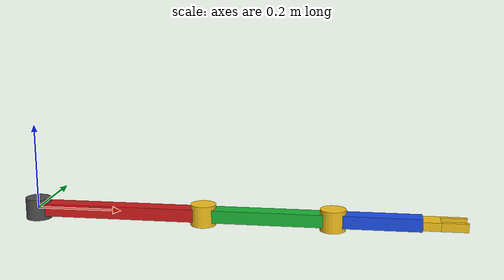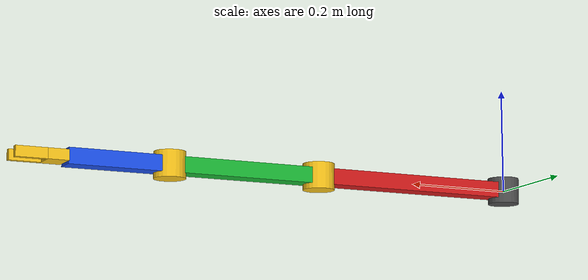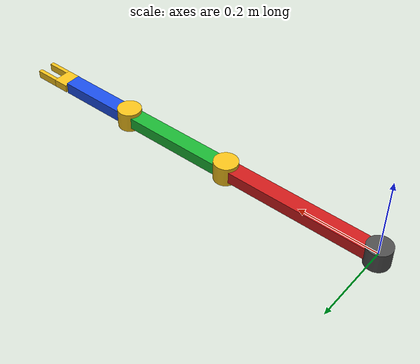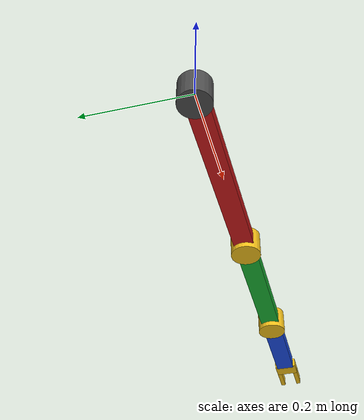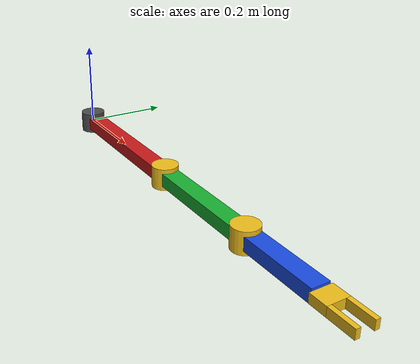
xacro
<?xml version="1.0"?>
<robot xmlns:xacro="http://www.ros.org/wiki/xacro" name="planar_arm">

  <!-- Link length parameters -->
  <xacro:property name="L1" value="0.4"/>
  <xacro:property name="L2" value="0.3"/>
  <xacro:property name="L3" value="0.2"/>

  <!-- Visual parameters -->
  <xacro:property name="link_width" value="0.04"/>
  <xacro:property name="link_thickness" value="0.03"/>
  <xacro:property name="joint_radius" value="0.03"/>
  <xacro:property name="joint_length" value="0.05"/>

  <!-- End-effector visual parameters -->
  <xacro:property name="ee_base_length" value="0.04"/>
  <xacro:property name="ee_base_width" value="0.05"/>
  <xacro:property name="ee_base_thickness" value="0.02"/>
  <xacro:property name="finger_length" value="0.06"/>
  <xacro:property name="finger_width" value="0.01"/>
  <xacro:property name="finger_thickness" value="0.02"/>
  <xacro:property name="finger_gap" value="0.04"/>

  <!-- World and base -->
  <link name="world"/>

  <link name="base_link">
    <visual>
      <geometry>
        <cylinder radius="${joint_radius}" length="${joint_length}"/>
      </geometry>
      <origin xyz="0 0 0" rpy="0 0 0"/>
      <material name="dark_grey">
        <color rgba="0.3 0.3 0.3 1.0"/>
      </material>
    </visual>
  </link>

  <joint name="world_to_base" type="fixed">
    <parent link="world"/>
    <child link="base_link"/>
    <origin xyz="0 0 0" rpy="0 0 0"/>
  </joint>

  <!-- Link 1 -->
  <link name="link_1">
    <visual name="link_1_bar">
      <geometry>
        <box size="${L1} ${link_width} ${link_thickness}"/>
      </geometry>
      <origin xyz="${L1/2} 0 0" rpy="0 0 0"/>
      <material name="red">
        <color rgba="0.8 0.1 0.1 1.0"/>
      </material>
    </visual>

    <visual name="joint_1_cap">
      <geometry>
        <cylinder radius="${joint_radius}" length="${joint_length}"/>
      </geometry>
      <origin xyz="0 0 0" rpy="0 0 0"/>
      <material name="yellow">
        <color rgba="0.95 0.75 0.1 1.0"/>
      </material>
    </visual>

    <visual name="joint_2_cap">
      <geometry>
        <cylinder radius="${joint_radius}" length="${joint_length}"/>
      </geometry>
      <origin xyz="${L1} 0 0" rpy="0 0 0"/>
      <material name="yellow">
        <color rgba="0.95 0.75 0.1 1.0"/>
      </material>
    </visual>
  </link>

  <!-- Link 2 -->
  <link name="link_2">
    <visual name="link_2_bar">
      <geometry>
        <box size="${L2} ${link_width} ${link_thickness}"/>
      </geometry>
      <origin xyz="${L2/2} 0 0" rpy="0 0 0"/>
      <material name="green">
        <color rgba="0.1 0.7 0.2 1.0"/>
      </material>
    </visual>

    <visual name="joint_3_cap">
      <geometry>
        <cylinder radius="${joint_radius}" length="${joint_length}"/>
      </geometry>
      <origin xyz="${L2} 0 0" rpy="0 0 0"/>
      <material name="yellow">
        <color rgba="0.95 0.75 0.1 1.0"/>
      </material>
    </visual>
  </link>

  <!-- Link 3 -->
  <link name="link_3">
    <visual name="link_3_bar">
      <geometry>
        <box size="${L3} ${link_width} ${link_thickness}"/>
      </geometry>
      <origin xyz="${L3/2} 0 0" rpy="0 0 0"/>
      <material name="blue">
        <color rgba="0.1 0.3 0.9 1.0"/>
      </material>
    </visual>
  </link>

  <!-- Revolute joints -->
  <joint name="joint_1" type="revolute">
    <parent link="base_link"/>
    <child link="link_1"/>
    <origin xyz="0 0 0" rpy="0 0 0"/>
    <axis xyz="0 0 1"/>
    <limit lower="-3.14159" upper="3.14159" effort="1.0" velocity="1.0"/>
  </joint>

  <joint name="joint_2" type="revolute">
    <parent link="link_1"/>
    <child link="link_2"/>
    <origin xyz="${L1} 0 0" rpy="0 0 0"/>
    <axis xyz="0 0 1"/>
    <limit lower="-3.14159" upper="3.14159" effort="1.0" velocity="1.0"/>
  </joint>

  <joint name="joint_3" type="revolute">
    <parent link="link_2"/>
    <child link="link_3"/>
    <origin xyz="${L2} 0 0" rpy="0 0 0"/>
    <axis xyz="0 0 1"/>
    <limit lower="-3.14159" upper="3.14159" effort="1.0" velocity="1.0"/>
  </joint>

  <!-- End effector -->
  <link name="end_effector">

    <!-- Base block -->
    <visual name="ee_base">
      <geometry>
        <box size="${ee_base_length} ${ee_base_width} ${ee_base_thickness}"/>
      </geometry>
      <origin xyz="${ee_base_length/2} 0 0" rpy="0 0 0"/>
      <material name="yellow">
        <color rgba="0.95 0.75 0.1 1.0"/>
      </material>
    </visual>

    <!-- Upper finger -->
    <visual name="upper_finger">
      <geometry>
        <box size="${finger_length} ${finger_width} ${finger_thickness}"/>
      </geometry>
      <origin xyz="${ee_base_length + finger_length/2} ${finger_gap/2} 0" rpy="0 0 0"/>
      <material name="yellow">
        <color rgba="0.95 0.75 0.1 1.0"/>
      </material>
    </visual>

    <!-- Lower finger -->
    <visual name="lower_finger">
      <geometry>
        <box size="${finger_length} ${finger_width} ${finger_thickness}"/>
      </geometry>
      <origin xyz="${ee_base_length + finger_length/2} ${-finger_gap/2} 0" rpy="0 0 0"/>
      <material name="yellow">
        <color rgba="0.95 0.75 0.1 1.0"/>
      </material>
    </visual>

  </link>

  <joint name="ee_fixed" type="fixed">
    <parent link="link_3"/>
    <child link="end_effector"/>
    <origin xyz="${L3} 0 0" rpy="0 0 0"/>
  </joint>

</robot>
